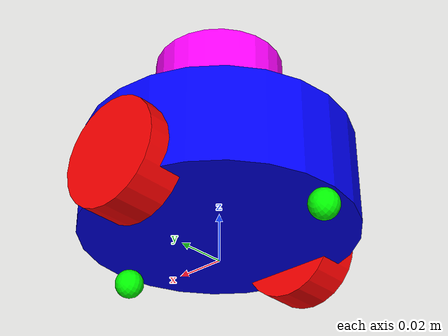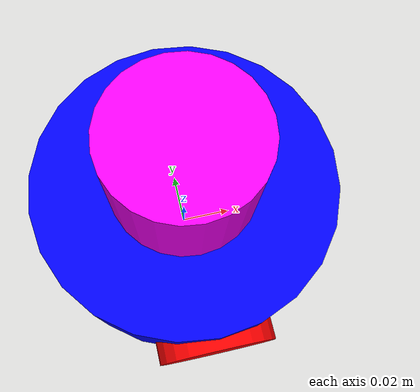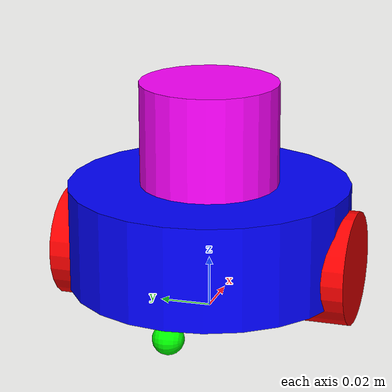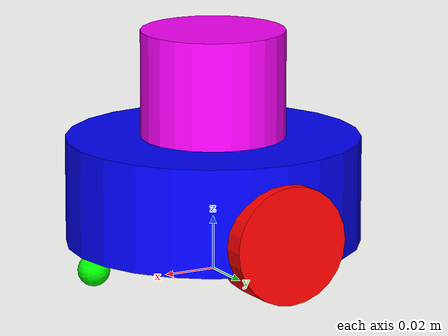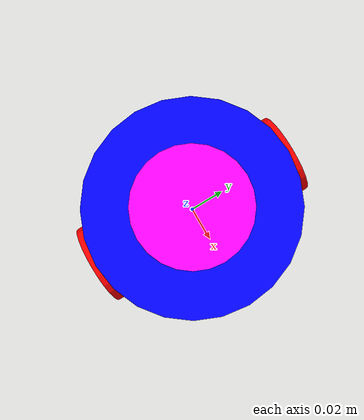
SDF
<?xml version="1.0" ?>
<sdf version="1.8">

    <model name='alphabot2' canonical_link='telo'>
        <!-- https://gazebosim.org/api/sim/9/auto_inertia_calculation.html -->

        <!-- celkova hmotnost: 310g = 0.31kg -->
        <!-- hmotnost kolesa: 20g -->
        <!-- hmotnost bez kolies: 270g = 0.27kg -->
        <!-- objem tela: pi * 0.055^2 * 0.04 = 0.000380132711084365 -->
        <!-- hustota: 0.27 / 0.00038... = 710.278 -->
        <link name='telo'>
            <pose relative_to='__model__'>0 0 0.031 0 0 0</pose>    <!-- __model__ -->
            <inertial auto="true" />
            <collision name='collision'>
                <density>710.278</density>
                <geometry>
                    <cylinder>
                        <radius>0.055</radius>
                        <length>0.04</length>
                    </cylinder>
                </geometry>
            </collision>
            <visual name='visual'>
                <geometry>
                    <cylinder>
                        <radius>0.055</radius>
                        <length>0.04</length>
                    </cylinder>
                </geometry>
                <material>
                    <ambient>0.0 0.0 1.0 1</ambient>
                    <diffuse>0.0 0.0 1.0 1</diffuse>
                    <specular>0.0 0.0 1.0 1</specular>
                </material>
            </visual>
        </link>

        <!-- hmotnost kolesa: 20g -->
        <!-- objem kolesa: pi * 0.022^2 * 0.017 = 0.00002584 -->
        <!-- hustota: 0.020 / 0.0000258... = 773.72359 -->
        <link name='lave_koleso'>
            <pose relative_to="telo">0 0.050 -0.009 -1.5707 0 0</pose>
            <inertial auto="true" />
            <collision name='collision'>
                <density>773.72359</density>
                <geometry>
                    <cylinder>
                        <radius>0.022</radius>
                        <length>0.017</length>
                    </cylinder>
                </geometry>
            </collision>
            <visual name='visual'>
                <geometry>
                    <cylinder>
                        <radius>0.022</radius>
                        <length>0.017</length>
                    </cylinder>
                </geometry>
                <material>
                    <ambient>1.0 0.0 0.0 1</ambient>
                    <diffuse>1.0 0.0 0.0 1</diffuse>
                    <specular>1.0 0.0 0.0 1</specular>
                </material>
            </visual>
        </link>
        <joint name='lave_koleso_zaves' type='revolute'>
            <pose relative_to='lave_koleso'/>
            <parent>telo</parent>
            <child>lave_koleso</child>
            <axis>
                <xyz expressed_in='__model__'>0 1 0</xyz> <!--can be descired to any frame or even arbitrary frames-->
                <limit>
                    <lower>-1.79769e+308</lower>    <!--negative infinity-->
                    <upper>1.79769e+308</upper>     <!--positive infinity-->
                </limit>
            </axis>
        </joint>

        <link name='prave_koleso'>
            <pose relative_to="telo">0 -0.050 -0.009 -1.5707 0 0</pose>
            <inertial auto="true" />
            <collision name='collision'>
                <density>773.72359</density>
                <geometry>
                    <cylinder>
                        <radius>0.022</radius>
                        <length>0.017</length>
                    </cylinder>
                </geometry>
            </collision>
            <visual name='visual'>
                <geometry>
                    <cylinder>
                        <radius>0.022</radius>
                        <length>0.017</length>
                    </cylinder>
                </geometry>
                <material>
                    <ambient>1.0 0.0 0.0 1</ambient>
                    <diffuse>1.0 0.0 0.0 1</diffuse>
                    <specular>1.0 0.0 0.0 1</specular>
                </material>
            </visual>
        </link>
        <joint name='prave_koleso_zaves' type='revolute'>
            <pose relative_to='prave_koleso'/>
            <parent>telo</parent>
            <child>prave_koleso</child>
            <axis>
                <xyz expressed_in='__model__'>0 1 0</xyz>
                <limit>
                    <lower>-1.79769e+308</lower>    <!--negative infinity-->
                    <upper>1.79769e+308</upper>     <!--positive infinity-->
                </limit>
            </axis>
        </joint>

        <!-- radius: 1.2 cm -->
        <link name='caster1'>
            <pose relative_to="telo">-0.050 0 -0.025 -1.5707 0 0</pose>
            <inertial auto="true" />
            <collision name='collision'>
                <density>1000</density>
                <geometry>
                    <sphere>
                        <radius>0.006</radius>
                    </sphere>
                </geometry>
                <surface>
                    <friction>
                        <ode>
                          <mu>0.001</mu>
                          <mu2>0.001</mu2>
                        </ode>
                    </friction>
                </surface>
            </collision>
            <visual name='visual'>
                <geometry>
                    <sphere>
                        <radius>0.006</radius>
                    </sphere>
                </geometry>
                <material>
                    <ambient>0.0 1 0.0 1</ambient>
                    <diffuse>0.0 1 0.0 1</diffuse>
                    <specular>0.0 1 0.0 1</specular>
                </material>
            </visual>
        </link>
        <joint name='caster1_zaves' type='fixed'>
            <parent>telo</parent>
            <child>caster1</child>
        </joint>

        <link name='caster2'>
            <pose relative_to="telo">0.050 0 -0.025 -1.5707 0 0</pose>
            <inertial auto="true" />
            <collision name='collision'>
                <density>1000</density>
                <geometry>
                    <sphere>
                        <radius>0.006</radius>
                    </sphere>
                </geometry>
                <surface>
                    <friction>
                        <ode>
                          <mu>0.001</mu>
                          <mu2>0.001</mu2>
                        </ode>
                    </friction>
                </surface>
            </collision>
            <visual name='visual'>
                <geometry>
                    <sphere>
                        <radius>0.006</radius>
                    </sphere>
                </geometry>
                <material>
                    <ambient>0.0 1 0.0 1</ambient>
                    <diffuse>0.0 1 0.0 1</diffuse>
                    <specular>0.0 1 0.0 1</specular>
                </material>
            </visual>
        </link>
        <joint name='caster2_zaves' type='fixed'>
            <parent>telo</parent>
            <child>caster2</child>
        </joint>

        <!-- lidar -->
        <frame name="lidar_frame" attached_to='telo'>
            <pose>0.0 0 0.04 0 0 0</pose>
        </frame>
        <link name='lidar'>
            <pose relative_to='lidar_frame'/>
            <inertial auto="true" />
            <collision name='collision'>
                <geometry>
                    <cylinder>
                        <radius>0.027</radius>
                        <length>0.04</length>
                    </cylinder>
                </geometry>
            </collision>
            <visual name='visual'>
                <geometry>
                    <cylinder>
                        <radius>0.027</radius>
                        <length>0.04</length>
                    </cylinder>
                </geometry>
                <material>
                    <ambient>1.0 0.0 1.0 1</ambient>
                    <diffuse>1.0 0.0 1.0 1</diffuse>
                    <specular>1.0 0.0 1.0 1</specular>
                </material>
            </visual>
            <sensor name="lidar" type="gpu_lidar">
                <pose relative_to="lidar_frame">0 0 0 0 0 0</pose>
                <topic>scan</topic>
                <gz_frame_id>lidar</gz_frame_id>
                <update_rate>10</update_rate> <!-- 10 Hz = 0.1 s -->
                <always_on>1</always_on>
                <visualize>1</visualize>
                <ray>
                    <scan>
                        <horizontal>
                            <samples>640</samples>
                            <resolution>1</resolution>
                            <min_angle>-3.14</min_angle>
                            <max_angle>3.14</max_angle>
                        </horizontal>
                        <vertical>
                            <samples>1</samples>
                            <resolution>0.01</resolution>
                            <min_angle>0</min_angle>
                            <max_angle>0</max_angle>
                        </vertical>
                    </scan>
                    <range>
                        <min>0.08</min>
                        <max>10.0</max>
                        <resolution>0.01</resolution>
                    </range>
                </ray>
            </sensor>
        </link>
        <joint name='lidar_pripoj' type='fixed'>
            <parent>telo</parent>
            <child>lidar</child>
        </joint>

        <!-- Gazebo Diff Drive -->
        <plugin filename="gz-sim-diff-drive-system"
                name="gz::sim::systems::DiffDrive">
            <left_joint>lave_koleso_zaves</left_joint>
            <right_joint>prave_koleso_zaves</right_joint>
            <wheel_separation>0.1</wheel_separation>
            <wheel_radius>0.022</wheel_radius>
            <odom_publish_frequency>10</odom_publish_frequency>

            <max_linear_acceleration>0.1</max_linear_acceleration>

            <topic>cmd_vel</topic>
            <odom_topic>odom</odom_topic>
            <tf_topic>tf</tf_topic>

            <frame_id>odom</frame_id>
            <child_frame_id>telo</child_frame_id>
        </plugin>
        <plugin filename="gz-sim-joint-state-publisher-system"
                name="gz::sim::systems::JointStatePublisher">
            <topic>joint_states</topic>
            <joint_name>lave_koleso_zaves</joint_name>
            <joint_name>prave_koleso_zaves</joint_name>
        </plugin>

        <!-- pre SLAM Toolbox -->

    </model>

</sdf>
